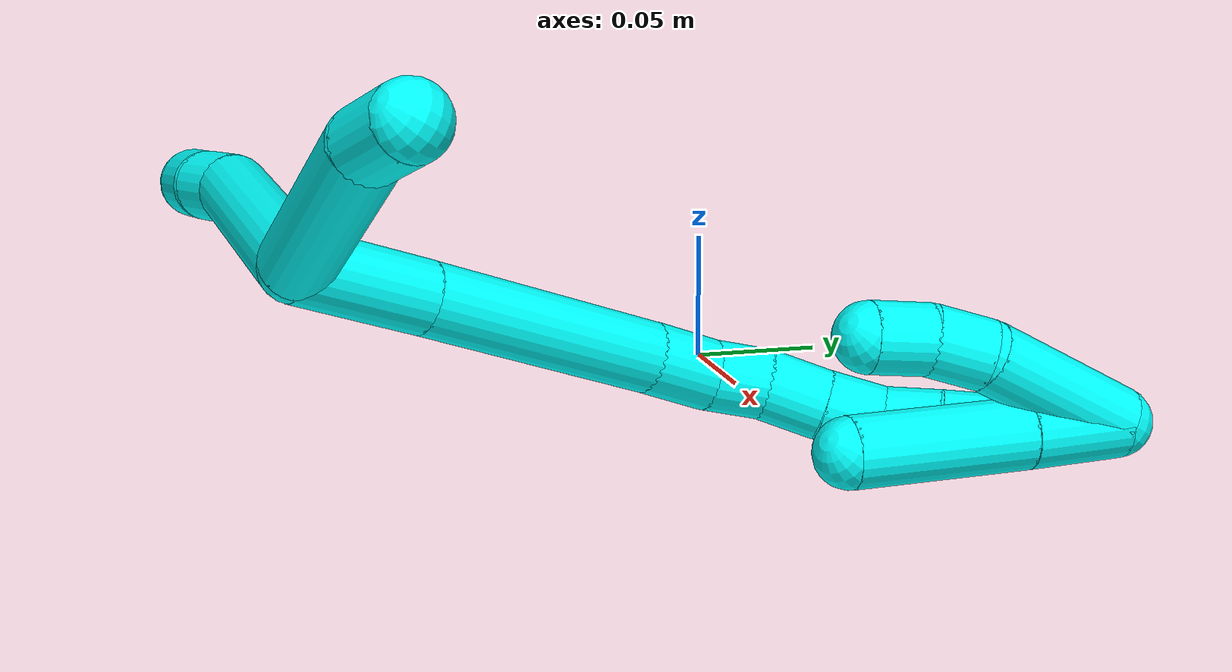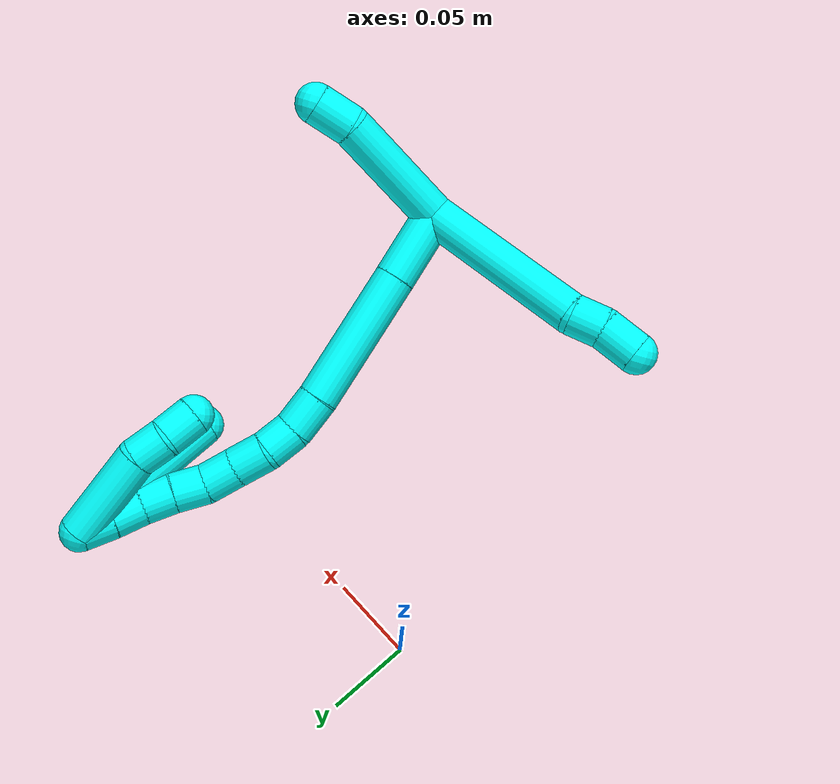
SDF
<sdf version="1.7">
 <world name="default">
  <model name="3">
   <static>0</static>
   <link name="3">
    <collision name="collision-cylinder-e_1_2_8">
     <pose>-0.023449 -0.044962 -0.015435 1.90149 -0.458255 -0.631445</pose>
     <geometry><cylinder><radius>0.0125</radius><length>0.106013</length></cylinder></geometry>
     <surface>
      <friction><ode><mu>1.16</mu><mu2>1.16</mu2><slip1>0</slip1><slip2>0</slip2></ode></friction>
      <contact><ode><kp>1e+06</kp><kd>1</kd><max_vel>0</max_vel><min_depth>0.001</min_depth></ode></contact>
     </surface>
    </collision>
    <visual name="visual-cylinder-e_1_2_8">
     <pose>-0.023449 -0.044962 -0.015435 1.90149 -0.458255 -0.631445</pose>
     <geometry><cylinder><radius>0.0125</radius><length>0.106013</length></cylinder></geometry>
     <material><ambient>0.003922 1 0.996078 1</ambient></material>
    </visual>
    <collision name="collision-cylinder-e_2_8_9">
     <pose>-0.048965 -0.099797 -0.032053 1.69 -0.204893 -0.23068</pose>
     <geometry><cylinder><radius>0.0125</radius><length>0.020313</length></cylinder></geometry>
     <surface>
      <friction><ode><mu>1.16</mu><mu2>1.16</mu2><slip1>0</slip1><slip2>0</slip2></ode></friction>
      <contact><ode><kp>1e+06</kp><kd>1</kd><max_vel>0</max_vel><min_depth>0.001</min_depth></ode></contact>
     </surface>
    </collision>
    <visual name="visual-cylinder-e_2_8_9">
     <pose>-0.048965 -0.099797 -0.032053 1.69 -0.204893 -0.23068</pose>
     <geometry><cylinder><radius>0.0125</radius><length>0.020313</length></cylinder></geometry>
     <material><ambient>0.003922 1 0.996078 1</ambient></material>
    </visual>
    <collision name="collision-cylinder-e_3_9_6">
     <pose>-0.054277 -0.120292 -0.037332 1.93884 -0.277717 -0.401863</pose>
     <geometry><cylinder><radius>0.0125</radius><length>0.023674</length></cylinder></geometry>
     <surface>
      <friction><ode><mu>1.16</mu><mu2>1.16</mu2><slip1>0</slip1><slip2>0</slip2></ode></friction>
      <contact><ode><kp>1e+06</kp><kd>1</kd><max_vel>0</max_vel><min_depth>0.001</min_depth></ode></contact>
     </surface>
    </collision>
    <visual name="visual-cylinder-e_3_9_6">
     <pose>-0.054277 -0.120292 -0.037332 1.93884 -0.277717 -0.401863</pose>
     <geometry><cylinder><radius>0.0125</radius><length>0.023674</length></cylinder></geometry>
     <material><ambient>0.003922 1 0.996078 1</ambient></material>
    </visual>
    <collision name="collision-cylinder-e_1_2_10">
     <pose>-0.008828 0.031842 0.018138 -1.05302 -0.236399 0.137829</pose>
     <geometry><cylinder><radius>0.0125</radius><length>0.075388</length></cylinder></geometry>
     <surface>
      <friction><ode><mu>1.16</mu><mu2>1.16</mu2><slip1>0</slip1><slip2>0</slip2></ode></friction>
      <contact><ode><kp>1e+06</kp><kd>1</kd><max_vel>0</max_vel><min_depth>0.001</min_depth></ode></contact>
     </surface>
    </collision>
    <visual name="visual-cylinder-e_1_2_10">
     <pose>-0.008828 0.031842 0.018138 -1.05302 -0.236399 0.137829</pose>
     <geometry><cylinder><radius>0.0125</radius><length>0.075388</length></cylinder></geometry>
     <material><ambient>0.003922 1 0.996078 1</ambient></material>
    </visual>
    <collision name="collision-cylinder-e_2_10_5">
     <pose>-0.018702 0.07548 0.039622 -1.29437 -0.085082 0.064319</pose>
     <geometry><cylinder><radius>0.0125</radius><length>0.024612</length></cylinder></geometry>
     <surface>
      <friction><ode><mu>1.16</mu><mu2>1.16</mu2><slip1>0</slip1><slip2>0</slip2></ode></friction>
      <contact><ode><kp>1e+06</kp><kd>1</kd><max_vel>0</max_vel><min_depth>0.001</min_depth></ode></contact>
     </surface>
    </collision>
    <visual name="visual-cylinder-e_2_10_5">
     <pose>-0.018702 0.07548 0.039622 -1.29437 -0.085082 0.064319</pose>
     <geometry><cylinder><radius>0.0125</radius><length>0.024612</length></cylinder></geometry>
     <material><ambient>0.003922 1 0.996078 1</ambient></material>
    </visual>
    <collision name="collision-cylinder-e_1_2_11">
     <pose>-0.003483 0.00625 -0.0216 -2.85995 -0.153684 0.995091</pose>
     <geometry><cylinder><radius>0.0125</radius><length>0.045508</length></cylinder></geometry>
     <surface>
      <friction><ode><mu>1.16</mu><mu2>1.16</mu2><slip1>0</slip1><slip2>0</slip2></ode></friction>
      <contact><ode><kp>1e+06</kp><kd>1</kd><max_vel>0</max_vel><min_depth>0.001</min_depth></ode></contact>
     </surface>
    </collision>
    <visual name="visual-cylinder-e_1_2_11">
     <pose>-0.003483 0.00625 -0.0216 -2.85995 -0.153684 0.995091</pose>
     <geometry><cylinder><radius>0.0125</radius><length>0.045508</length></cylinder></geometry>
     <material><ambient>0.003922 1 0.996078 1</ambient></material>
    </visual>
    <collision name="collision-cylinder-e_2_11_12">
     <pose>-0.012961 0.024678 -0.084062 -2.85193 -0.139683 0.894442</pose>
     <geometry><cylinder><radius>0.0125</radius><length>0.086115</length></cylinder></geometry>
     <surface>
      <friction><ode><mu>1.16</mu><mu2>1.16</mu2><slip1>0</slip1><slip2>0</slip2></ode></friction>
      <contact><ode><kp>1e+06</kp><kd>1</kd><max_vel>0</max_vel><min_depth>0.001</min_depth></ode></contact>
     </surface>
    </collision>
    <visual name="visual-cylinder-e_2_11_12">
     <pose>-0.012961 0.024678 -0.084062 -2.85193 -0.139683 0.894442</pose>
     <geometry><cylinder><radius>0.0125</radius><length>0.086115</length></cylinder></geometry>
     <material><ambient>0.003922 1 0.996078 1</ambient></material>
    </visual>
    <collision name="collision-cylinder-e_3_12_13">
     <pose>-0.020077 0.041283 -0.136155 -2.76616 -0.092595 0.478468</pose>
     <geometry><cylinder><radius>0.0125</radius><length>0.024247</length></cylinder></geometry>
     <surface>
      <friction><ode><mu>1.16</mu><mu2>1.16</mu2><slip1>0</slip1><slip2>0</slip2></ode></friction>
      <contact><ode><kp>1e+06</kp><kd>1</kd><max_vel>0</max_vel><min_depth>0.001</min_depth></ode></contact>
     </surface>
    </collision>
    <visual name="visual-cylinder-e_3_12_13">
     <pose>-0.020077 0.041283 -0.136155 -2.76616 -0.092595 0.478468</pose>
     <geometry><cylinder><radius>0.0125</radius><length>0.024247</length></cylinder></geometry>
     <material><ambient>0.003922 1 0.996078 1</ambient></material>
    </visual>
    <collision name="collision-cylinder-e_4_13_14">
     <pose>-0.022585 0.051642 -0.155509 -2.51085 -0.137042 0.414653</pose>
     <geometry><cylinder><radius>0.0125</radius><length>0.020308</length></cylinder></geometry>
     <surface>
      <friction><ode><mu>1.16</mu><mu2>1.16</mu2><slip1>0</slip1><slip2>0</slip2></ode></friction>
      <contact><ode><kp>1e+06</kp><kd>1</kd><max_vel>0</max_vel><min_depth>0.001</min_depth></ode></contact>
     </surface>
    </collision>
    <visual name="visual-cylinder-e_4_13_14">
     <pose>-0.022585 0.051642 -0.155509 -2.51085 -0.137042 0.414653</pose>
     <geometry><cylinder><radius>0.0125</radius><length>0.020308</length></cylinder></geometry>
     <material><ambient>0.003922 1 0.996078 1</ambient></material>
    </visual>
    <collision name="collision-cylinder-e_5_14_15">
     <pose>-0.023076 0.065003 -0.171344 -2.37483 0.083566 -0.206569</pose>
     <geometry><cylinder><radius>0.0125</radius><length>0.021491</length></cylinder></geometry>
     <surface>
      <friction><ode><mu>1.16</mu><mu2>1.16</mu2><slip1>0</slip1><slip2>0</slip2></ode></friction>
      <contact><ode><kp>1e+06</kp><kd>1</kd><max_vel>0</max_vel><min_depth>0.001</min_depth></ode></contact>
     </surface>
    </collision>
    <visual name="visual-cylinder-e_5_14_15">
     <pose>-0.023076 0.065003 -0.171344 -2.37483 0.083566 -0.206569</pose>
     <geometry><cylinder><radius>0.0125</radius><length>0.021491</length></cylinder></geometry>
     <material><ambient>0.003922 1 0.996078 1</ambient></material>
    </visual>
    <collision name="collision-cylinder-e_6_15_16">
     <pose>-0.021942 0.079804 -0.186703 -2.37458 0.022298 -0.055252</pose>
     <geometry><cylinder><radius>0.0125</radius><length>0.021248</length></cylinder></geometry>
     <surface>
      <friction><ode><mu>1.16</mu><mu2>1.16</mu2><slip1>0</slip1><slip2>0</slip2></ode></friction>
      <contact><ode><kp>1e+06</kp><kd>1</kd><max_vel>0</max_vel><min_depth>0.001</min_depth></ode></contact>
     </surface>
    </collision>
    <visual name="visual-cylinder-e_6_15_16">
     <pose>-0.021942 0.079804 -0.186703 -2.37458 0.022298 -0.055252</pose>
     <geometry><cylinder><radius>0.0125</radius><length>0.021248</length></cylinder></geometry>
     <material><ambient>0.003922 1 0.996078 1</ambient></material>
    </visual>
    <collision name="collision-cylinder-e_7_16_17">
     <pose>-0.023108 0.095945 -0.199608 -2.11085 -0.136401 0.240022</pose>
     <geometry><cylinder><radius>0.0125</radius><length>0.020643</length></cylinder></geometry>
     <surface>
      <friction><ode><mu>1.16</mu><mu2>1.16</mu2><slip1>0</slip1><slip2>0</slip2></ode></friction>
      <contact><ode><kp>1e+06</kp><kd>1</kd><max_vel>0</max_vel><min_depth>0.001</min_depth></ode></contact>
     </surface>
    </collision>
    <visual name="visual-cylinder-e_7_16_17">
     <pose>-0.023108 0.095945 -0.199608 -2.11085 -0.136401 0.240022</pose>
     <geometry><cylinder><radius>0.0125</radius><length>0.020643</length></cylinder></geometry>
     <material><ambient>0.003922 1 0.996078 1</ambient></material>
    </visual>
    <collision name="collision-cylinder-e_8_17_18">
     <pose>-0.02586 0.112797 -0.210706 -2.19651 -0.134418 0.261854</pose>
     <geometry><cylinder><radius>0.0125</radius><length>0.020122</length></cylinder></geometry>
     <surface>
      <friction><ode><mu>1.16</mu><mu2>1.16</mu2><slip1>0</slip1><slip2>0</slip2></ode></friction>
      <contact><ode><kp>1e+06</kp><kd>1</kd><max_vel>0</max_vel><min_depth>0.001</min_depth></ode></contact>
     </surface>
    </collision>
    <visual name="visual-cylinder-e_8_17_18">
     <pose>-0.02586 0.112797 -0.210706 -2.19651 -0.134418 0.261854</pose>
     <geometry><cylinder><radius>0.0125</radius><length>0.020122</length></cylinder></geometry>
     <material><ambient>0.003922 1 0.996078 1</ambient></material>
    </visual>
    <collision name="collision-cylinder-e_9_18_19">
     <pose>-0.030183 0.128375 -0.222533 -2.24474 -0.300636 0.609978</pose>
     <geometry><cylinder><radius>0.0125</radius><length>0.020089</length></cylinder></geometry>
     <surface>
      <friction><ode><mu>1.16</mu><mu2>1.16</mu2><slip1>0</slip1><slip2>0</slip2></ode></friction>
      <contact><ode><kp>1e+06</kp><kd>1</kd><max_vel>0</max_vel><min_depth>0.001</min_depth></ode></contact>
     </surface>
    </collision>
    <visual name="visual-cylinder-e_9_18_19">
     <pose>-0.030183 0.128375 -0.222533 -2.24474 -0.300636 0.609978</pose>
     <geometry><cylinder><radius>0.0125</radius><length>0.020089</length></cylinder></geometry>
     <material><ambient>0.003922 1 0.996078 1</ambient></material>
    </visual>
    <collision name="collision-cylinder-e_10_19_1">
     <pose>-0.036242 0.143806 -0.233979 -2.17345 -0.309977 0.577684</pose>
     <geometry><cylinder><radius>0.0125</radius><length>0.020227</length></cylinder></geometry>
     <surface>
      <friction><ode><mu>1.16</mu><mu2>1.16</mu2><slip1>0</slip1><slip2>0</slip2></ode></friction>
      <contact><ode><kp>1e+06</kp><kd>1</kd><max_vel>0</max_vel><min_depth>0.001</min_depth></ode></contact>
     </surface>
    </collision>
    <visual name="visual-cylinder-e_10_19_1">
     <pose>-0.036242 0.143806 -0.233979 -2.17345 -0.309977 0.577684</pose>
     <geometry><cylinder><radius>0.0125</radius><length>0.020227</length></cylinder></geometry>
     <material><ambient>0.003922 1 0.996078 1</ambient></material>
    </visual>
    <collision name="collision-cylinder-e_1_1_20">
     <pose>-0.032035 0.142649 -0.225888 0.590967 0.420232 0.129651</pose>
     <geometry><cylinder><radius>0.0125</radius><length>0.035747</length></cylinder></geometry>
     <surface>
      <friction><ode><mu>1.16</mu><mu2>1.16</mu2><slip1>0</slip1><slip2>0</slip2></ode></friction>
      <contact><ode><kp>1e+06</kp><kd>1</kd><max_vel>0</max_vel><min_depth>0.001</min_depth></ode></contact>
     </surface>
    </collision>
    <visual name="visual-cylinder-e_1_1_20">
     <pose>-0.032035 0.142649 -0.225888 0.590967 0.420232 0.129651</pose>
     <geometry><cylinder><radius>0.0125</radius><length>0.035747</length></cylinder></geometry>
     <material><ambient>0.003922 1 0.996078 1</ambient></material>
    </visual>
    <collision name="collision-cylinder-e_2_20_4">
     <pose>-0.012226 0.116307 -0.188298 0.622422 0.400251 0.130308</pose>
     <geometry><cylinder><radius>0.0125</radius><length>0.064253</length></cylinder></geometry>
     <surface>
      <friction><ode><mu>1.16</mu><mu2>1.16</mu2><slip1>0</slip1><slip2>0</slip2></ode></friction>
      <contact><ode><kp>1e+06</kp><kd>1</kd><max_vel>0</max_vel><min_depth>0.001</min_depth></ode></contact>
     </surface>
    </collision>
    <visual name="visual-cylinder-e_2_20_4">
     <pose>-0.012226 0.116307 -0.188298 0.622422 0.400251 0.130308</pose>
     <geometry><cylinder><radius>0.0125</radius><length>0.064253</length></cylinder></geometry>
     <material><ambient>0.003922 1 0.996078 1</ambient></material>
    </visual>
    <collision name="collision-cylinder-e_1_1_21">
     <pose>-0.040967 0.141134 -0.212583 0.376149 -0.056732 -0.0108</pose>
     <geometry><cylinder><radius>0.0125</radius><length>0.057842</length></cylinder></geometry>
     <surface>
      <friction><ode><mu>1.16</mu><mu2>1.16</mu2><slip1>0</slip1><slip2>0</slip2></ode></friction>
      <contact><ode><kp>1e+06</kp><kd>1</kd><max_vel>0</max_vel><min_depth>0.001</min_depth></ode></contact>
     </surface>
    </collision>
    <visual name="visual-cylinder-e_1_1_21">
     <pose>-0.040967 0.141134 -0.212583 0.376149 -0.056732 -0.0108</pose>
     <geometry><cylinder><radius>0.0125</radius><length>0.057842</length></cylinder></geometry>
     <material><ambient>0.003922 1 0.996078 1</ambient></material>
    </visual>
    <collision name="collision-cylinder-e_2_21_22">
     <pose>-0.042273 0.124087 -0.177545 0.66685 0.032114 0.011124</pose>
     <geometry><cylinder><radius>0.0125</radius><length>0.020837</length></cylinder></geometry>
     <surface>
      <friction><ode><mu>1.16</mu><mu2>1.16</mu2><slip1>0</slip1><slip2>0</slip2></ode></friction>
      <contact><ode><kp>1e+06</kp><kd>1</kd><max_vel>0</max_vel><min_depth>0.001</min_depth></ode></contact>
     </surface>
    </collision>
    <visual name="visual-cylinder-e_2_21_22">
     <pose>-0.042273 0.124087 -0.177545 0.66685 0.032114 0.011124</pose>
     <geometry><cylinder><radius>0.0125</radius><length>0.020837</length></cylinder></geometry>
     <material><ambient>0.003922 1 0.996078 1</ambient></material>
    </visual>
    <collision name="collision-cylinder-e_3_22_3">
     <pose>-0.039099 0.111536 -0.161101 0.636738 0.269577 0.08933</pose>
     <geometry><cylinder><radius>0.0125</radius><length>0.021321</length></cylinder></geometry>
     <surface>
      <friction><ode><mu>1.16</mu><mu2>1.16</mu2><slip1>0</slip1><slip2>0</slip2></ode></friction>
      <contact><ode><kp>1e+06</kp><kd>1</kd><max_vel>0</max_vel><min_depth>0.001</min_depth></ode></contact>
     </surface>
    </collision>
    <visual name="visual-cylinder-e_3_22_3">
     <pose>-0.039099 0.111536 -0.161101 0.636738 0.269577 0.08933</pose>
     <geometry><cylinder><radius>0.0125</radius><length>0.021321</length></cylinder></geometry>
     <material><ambient>0.003922 1 0.996078 1</ambient></material>
    </visual>
    <collision name="collision-sphere-3">
     <pose>-0.03626 0.105427 -0.152839 0 -0 0</pose>
     <geometry><sphere><radius>0.0125</radius></sphere></geometry>
     <surface>
      <friction><ode><mu>1.16</mu><mu2>1.16</mu2><slip1>0</slip1><slip2>0</slip2></ode></friction>
      <contact><ode><kp>1e+06</kp><kd>1</kd><max_vel>0</max_vel><min_depth>0.001</min_depth></ode></contact>
     </surface>
    </collision>
    <visual name="visual-sphere-3">
     <pose>-0.03626 0.105427 -0.152839 0 -0 0</pose>
     <geometry><sphere><radius>0.0125</radius></sphere></geometry>
     <material><ambient>0.003922 1 0.996078 1</ambient></material>
    </visual>
    <collision name="collision-sphere-22">
     <pose>-0.041938 0.117646 -0.169362 0 -0 0</pose>
     <geometry><sphere><radius>0.0125</radius></sphere></geometry>
     <surface>
      <friction><ode><mu>1.16</mu><mu2>1.16</mu2><slip1>0</slip1><slip2>0</slip2></ode></friction>
      <contact><ode><kp>1e+06</kp><kd>1</kd><max_vel>0</max_vel><min_depth>0.001</min_depth></ode></contact>
     </surface>
    </collision>
    <visual name="visual-sphere-22">
     <pose>-0.041938 0.117646 -0.169362 0 -0 0</pose>
     <geometry><sphere><radius>0.0125</radius></sphere></geometry>
     <material><ambient>0.003922 1 0.996078 1</ambient></material>
    </visual>
    <collision name="collision-sphere-21">
     <pose>-0.042607 0.130527 -0.185727 0 -0 0</pose>
     <geometry><sphere><radius>0.0125</radius></sphere></geometry>
     <surface>
      <friction><ode><mu>1.16</mu><mu2>1.16</mu2><slip1>0</slip1><slip2>0</slip2></ode></friction>
      <contact><ode><kp>1e+06</kp><kd>1</kd><max_vel>0</max_vel><min_depth>0.001</min_depth></ode></contact>
     </surface>
    </collision>
    <visual name="visual-sphere-21">
     <pose>-0.042607 0.130527 -0.185727 0 -0 0</pose>
     <geometry><sphere><radius>0.0125</radius></sphere></geometry>
     <material><ambient>0.003922 1 0.996078 1</ambient></material>
    </visual>
    <collision name="collision-sphere-4">
     <pose>0.000293 0.099058 -0.164259 0 -0 0</pose>
     <geometry><sphere><radius>0.0125</radius></sphere></geometry>
     <surface>
      <friction><ode><mu>1.16</mu><mu2>1.16</mu2><slip1>0</slip1><slip2>0</slip2></ode></friction>
      <contact><ode><kp>1e+06</kp><kd>1</kd><max_vel>0</max_vel><min_depth>0.001</min_depth></ode></contact>
     </surface>
    </collision>
    <visual name="visual-sphere-4">
     <pose>0.000293 0.099058 -0.164259 0 -0 0</pose>
     <geometry><sphere><radius>0.0125</radius></sphere></geometry>
     <material><ambient>0.003922 1 0.996078 1</ambient></material>
    </visual>
    <collision name="collision-sphere-20">
     <pose>-0.024744 0.133557 -0.212337 0 -0 0</pose>
     <geometry><sphere><radius>0.0125</radius></sphere></geometry>
     <surface>
      <friction><ode><mu>1.16</mu><mu2>1.16</mu2><slip1>0</slip1><slip2>0</slip2></ode></friction>
      <contact><ode><kp>1e+06</kp><kd>1</kd><max_vel>0</max_vel><min_depth>0.001</min_depth></ode></contact>
     </surface>
    </collision>
    <visual name="visual-sphere-20">
     <pose>-0.024744 0.133557 -0.212337 0 -0 0</pose>
     <geometry><sphere><radius>0.0125</radius></sphere></geometry>
     <material><ambient>0.003922 1 0.996078 1</ambient></material>
    </visual>
    <collision name="collision-sphere-5">
     <pose>-0.019748 0.087276 0.042968 0 -0 0</pose>
     <geometry><sphere><radius>0.0125</radius></sphere></geometry>
     <surface>
      <friction><ode><mu>1.16</mu><mu2>1.16</mu2><slip1>0</slip1><slip2>0</slip2></ode></friction>
      <contact><ode><kp>1e+06</kp><kd>1</kd><max_vel>0</max_vel><min_depth>0.001</min_depth></ode></contact>
     </surface>
    </collision>
    <visual name="visual-sphere-5">
     <pose>-0.019748 0.087276 0.042968 0 -0 0</pose>
     <geometry><sphere><radius>0.0125</radius></sphere></geometry>
     <material><ambient>0.003922 1 0.996078 1</ambient></material>
    </visual>
    <collision name="collision-sphere-10">
     <pose>-0.017656 0.063684 0.036276 0 -0 0</pose>
     <geometry><sphere><radius>0.0125</radius></sphere></geometry>
     <surface>
      <friction><ode><mu>1.16</mu><mu2>1.16</mu2><slip1>0</slip1><slip2>0</slip2></ode></friction>
      <contact><ode><kp>1e+06</kp><kd>1</kd><max_vel>0</max_vel><min_depth>0.001</min_depth></ode></contact>
     </surface>
    </collision>
    <visual name="visual-sphere-10">
     <pose>-0.017656 0.063684 0.036276 0 -0 0</pose>
     <geometry><sphere><radius>0.0125</radius></sphere></geometry>
     <material><ambient>0.003922 1 0.996078 1</ambient></material>
    </visual>
    <collision name="collision-sphere-6">
     <pose>-0.057522 -0.130913 -0.041427 0 -0 0</pose>
     <geometry><sphere><radius>0.0125</radius></sphere></geometry>
     <surface>
      <friction><ode><mu>1.16</mu><mu2>1.16</mu2><slip1>0</slip1><slip2>0</slip2></ode></friction>
      <contact><ode><kp>1e+06</kp><kd>1</kd><max_vel>0</max_vel><min_depth>0.001</min_depth></ode></contact>
     </surface>
    </collision>
    <visual name="visual-sphere-6">
     <pose>-0.057522 -0.130913 -0.041427 0 -0 0</pose>
     <geometry><sphere><radius>0.0125</radius></sphere></geometry>
     <material><ambient>0.003922 1 0.996078 1</ambient></material>
    </visual>
    <collision name="collision-sphere-9">
     <pose>-0.051031 -0.109671 -0.033236 0 -0 0</pose>
     <geometry><sphere><radius>0.0125</radius></sphere></geometry>
     <surface>
      <friction><ode><mu>1.16</mu><mu2>1.16</mu2><slip1>0</slip1><slip2>0</slip2></ode></friction>
      <contact><ode><kp>1e+06</kp><kd>1</kd><max_vel>0</max_vel><min_depth>0.001</min_depth></ode></contact>
     </surface>
    </collision>
    <visual name="visual-sphere-9">
     <pose>-0.051031 -0.109671 -0.033236 0 -0 0</pose>
     <geometry><sphere><radius>0.0125</radius></sphere></geometry>
     <material><ambient>0.003922 1 0.996078 1</ambient></material>
    </visual>
    <collision name="collision-sphere-2">
     <geometry><sphere><radius>0.0125</radius></sphere></geometry>
     <surface>
      <friction><ode><mu>1.16</mu><mu2>1.16</mu2><slip1>0</slip1><slip2>0</slip2></ode></friction>
      <contact><ode><kp>1e+06</kp><kd>1</kd><max_vel>0</max_vel><min_depth>0.001</min_depth></ode></contact>
     </surface>
    </collision>
    <visual name="visual-sphere-2">
     <geometry><sphere><radius>0.0125</radius></sphere></geometry>
     <material><ambient>0.003922 1 0.996078 1</ambient></material>
    </visual>
    <collision name="collision-sphere-19">
     <pose>-0.033157 0.135872 -0.22852 0 -0 0</pose>
     <geometry><sphere><radius>0.0125</radius></sphere></geometry>
     <surface>
      <friction><ode><mu>1.16</mu><mu2>1.16</mu2><slip1>0</slip1><slip2>0</slip2></ode></friction>
      <contact><ode><kp>1e+06</kp><kd>1</kd><max_vel>0</max_vel><min_depth>0.001</min_depth></ode></contact>
     </surface>
    </collision>
    <visual name="visual-sphere-19">
     <pose>-0.033157 0.135872 -0.22852 0 -0 0</pose>
     <geometry><sphere><radius>0.0125</radius></sphere></geometry>
     <material><ambient>0.003922 1 0.996078 1</ambient></material>
    </visual>
    <collision name="collision-sphere-8">
     <pose>-0.046899 -0.089924 -0.030871 0 -0 0</pose>
     <geometry><sphere><radius>0.0125</radius></sphere></geometry>
     <surface>
      <friction><ode><mu>1.16</mu><mu2>1.16</mu2><slip1>0</slip1><slip2>0</slip2></ode></friction>
      <contact><ode><kp>1e+06</kp><kd>1</kd><max_vel>0</max_vel><min_depth>0.001</min_depth></ode></contact>
     </surface>
    </collision>
    <visual name="visual-sphere-8">
     <pose>-0.046899 -0.089924 -0.030871 0 -0 0</pose>
     <geometry><sphere><radius>0.0125</radius></sphere></geometry>
     <material><ambient>0.003922 1 0.996078 1</ambient></material>
    </visual>
    <collision name="collision-sphere-11">
     <pose>-0.006966 0.012499 -0.0432 0 -0 0</pose>
     <geometry><sphere><radius>0.0125</radius></sphere></geometry>
     <surface>
      <friction><ode><mu>1.16</mu><mu2>1.16</mu2><slip1>0</slip1><slip2>0</slip2></ode></friction>
      <contact><ode><kp>1e+06</kp><kd>1</kd><max_vel>0</max_vel><min_depth>0.001</min_depth></ode></contact>
     </surface>
    </collision>
    <visual name="visual-sphere-11">
     <pose>-0.006966 0.012499 -0.0432 0 -0 0</pose>
     <geometry><sphere><radius>0.0125</radius></sphere></geometry>
     <material><ambient>0.003922 1 0.996078 1</ambient></material>
    </visual>
    <collision name="collision-sphere-12">
     <pose>-0.018956 0.036857 -0.124924 0 -0 0</pose>
     <geometry><sphere><radius>0.0125</radius></sphere></geometry>
     <surface>
      <friction><ode><mu>1.16</mu><mu2>1.16</mu2><slip1>0</slip1><slip2>0</slip2></ode></friction>
      <contact><ode><kp>1e+06</kp><kd>1</kd><max_vel>0</max_vel><min_depth>0.001</min_depth></ode></contact>
     </surface>
    </collision>
    <visual name="visual-sphere-12">
     <pose>-0.018956 0.036857 -0.124924 0 -0 0</pose>
     <geometry><sphere><radius>0.0125</radius></sphere></geometry>
     <material><ambient>0.003922 1 0.996078 1</ambient></material>
    </visual>
    <collision name="collision-sphere-13">
     <pose>-0.021198 0.045709 -0.147386 0 -0 0</pose>
     <geometry><sphere><radius>0.0125</radius></sphere></geometry>
     <surface>
      <friction><ode><mu>1.16</mu><mu2>1.16</mu2><slip1>0</slip1><slip2>0</slip2></ode></friction>
      <contact><ode><kp>1e+06</kp><kd>1</kd><max_vel>0</max_vel><min_depth>0.001</min_depth></ode></contact>
     </surface>
    </collision>
    <visual name="visual-sphere-13">
     <pose>-0.021198 0.045709 -0.147386 0 -0 0</pose>
     <geometry><sphere><radius>0.0125</radius></sphere></geometry>
     <material><ambient>0.003922 1 0.996078 1</ambient></material>
    </visual>
    <collision name="collision-sphere-14">
     <pose>-0.023972 0.057574 -0.163633 0 -0 0</pose>
     <geometry><sphere><radius>0.0125</radius></sphere></geometry>
     <surface>
      <friction><ode><mu>1.16</mu><mu2>1.16</mu2><slip1>0</slip1><slip2>0</slip2></ode></friction>
      <contact><ode><kp>1e+06</kp><kd>1</kd><max_vel>0</max_vel><min_depth>0.001</min_depth></ode></contact>
     </surface>
    </collision>
    <visual name="visual-sphere-14">
     <pose>-0.023972 0.057574 -0.163633 0 -0 0</pose>
     <geometry><sphere><radius>0.0125</radius></sphere></geometry>
     <material><ambient>0.003922 1 0.996078 1</ambient></material>
    </visual>
    <collision name="collision-sphere-15">
     <pose>-0.022179 0.072433 -0.179056 0 -0 0</pose>
     <geometry><sphere><radius>0.0125</radius></sphere></geometry>
     <surface>
      <friction><ode><mu>1.16</mu><mu2>1.16</mu2><slip1>0</slip1><slip2>0</slip2></ode></friction>
      <contact><ode><kp>1e+06</kp><kd>1</kd><max_vel>0</max_vel><min_depth>0.001</min_depth></ode></contact>
     </surface>
    </collision>
    <visual name="visual-sphere-15">
     <pose>-0.022179 0.072433 -0.179056 0 -0 0</pose>
     <geometry><sphere><radius>0.0125</radius></sphere></geometry>
     <material><ambient>0.003922 1 0.996078 1</ambient></material>
    </visual>
    <collision name="collision-sphere-16">
     <pose>-0.021705 0.087175 -0.194351 0 -0 0</pose>
     <geometry><sphere><radius>0.0125</radius></sphere></geometry>
     <surface>
      <friction><ode><mu>1.16</mu><mu2>1.16</mu2><slip1>0</slip1><slip2>0</slip2></ode></friction>
      <contact><ode><kp>1e+06</kp><kd>1</kd><max_vel>0</max_vel><min_depth>0.001</min_depth></ode></contact>
     </surface>
    </collision>
    <visual name="visual-sphere-16">
     <pose>-0.021705 0.087175 -0.194351 0 -0 0</pose>
     <geometry><sphere><radius>0.0125</radius></sphere></geometry>
     <material><ambient>0.003922 1 0.996078 1</ambient></material>
    </visual>
    <collision name="collision-sphere-17">
     <pose>-0.024512 0.104716 -0.204866 0 -0 0</pose>
     <geometry><sphere><radius>0.0125</radius></sphere></geometry>
     <surface>
      <friction><ode><mu>1.16</mu><mu2>1.16</mu2><slip1>0</slip1><slip2>0</slip2></ode></friction>
      <contact><ode><kp>1e+06</kp><kd>1</kd><max_vel>0</max_vel><min_depth>0.001</min_depth></ode></contact>
     </surface>
    </collision>
    <visual name="visual-sphere-17">
     <pose>-0.024512 0.104716 -0.204866 0 -0 0</pose>
     <geometry><sphere><radius>0.0125</radius></sphere></geometry>
     <material><ambient>0.003922 1 0.996078 1</ambient></material>
    </visual>
    <collision name="collision-sphere-18">
     <pose>-0.027209 0.120879 -0.216545 0 -0 0</pose>
     <geometry><sphere><radius>0.0125</radius></sphere></geometry>
     <surface>
      <friction><ode><mu>1.16</mu><mu2>1.16</mu2><slip1>0</slip1><slip2>0</slip2></ode></friction>
      <contact><ode><kp>1e+06</kp><kd>1</kd><max_vel>0</max_vel><min_depth>0.001</min_depth></ode></contact>
     </surface>
    </collision>
    <visual name="visual-sphere-18">
     <pose>-0.027209 0.120879 -0.216545 0 -0 0</pose>
     <geometry><sphere><radius>0.0125</radius></sphere></geometry>
     <material><ambient>0.003922 1 0.996078 1</ambient></material>
    </visual>
    <collision name="collision-sphere-1">
     <pose>-0.039327 0.151741 -0.239439 0 -0 0</pose>
     <geometry><sphere><radius>0.0125</radius></sphere></geometry>
     <surface>
      <friction><ode><mu>1.16</mu><mu2>1.16</mu2><slip1>0</slip1><slip2>0</slip2></ode></friction>
      <contact><ode><kp>1e+06</kp><kd>1</kd><max_vel>0</max_vel><min_depth>0.001</min_depth></ode></contact>
     </surface>
    </collision>
    <visual name="visual-sphere-1">
     <pose>-0.039327 0.151741 -0.239439 0 -0 0</pose>
     <geometry><sphere><radius>0.0125</radius></sphere></geometry>
     <material><ambient>0.003922 1 0.996078 1</ambient></material>
    </visual>
    <inertial>
     <pose>-0.023234 0.050142 -0.107103 0 -0 0</pose>
     <mass>0.75</mass>
     <inertia><ixx>0.00022</ixx><ixy>0</ixy><ixz>0</ixz><iyy>2.7e-05</iyy><iyz>0</iyz><izz>0.000103</izz></inertia>
    </inertial>
   </link>
   <pose>0.170981 -0.180637 0.080341 0.309638 0.984631 -0.700628</pose>
  </model>
 </world>
</sdf>
